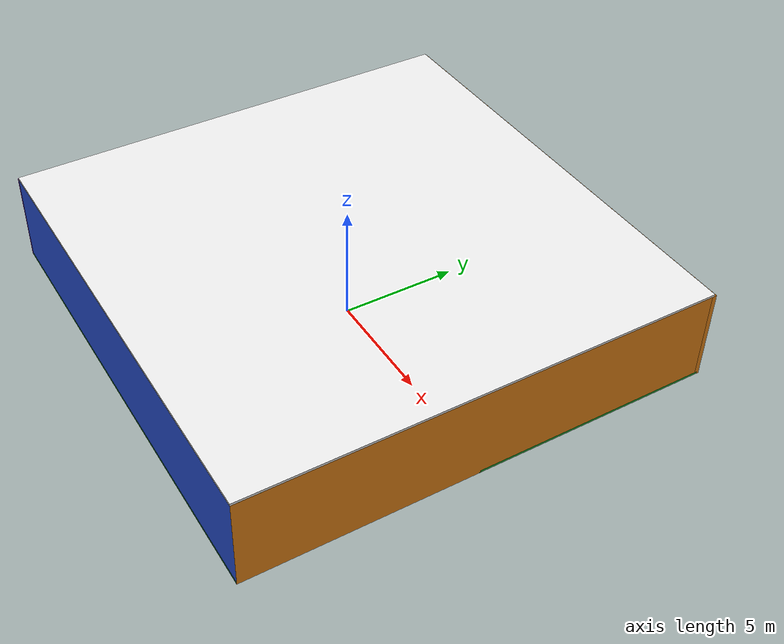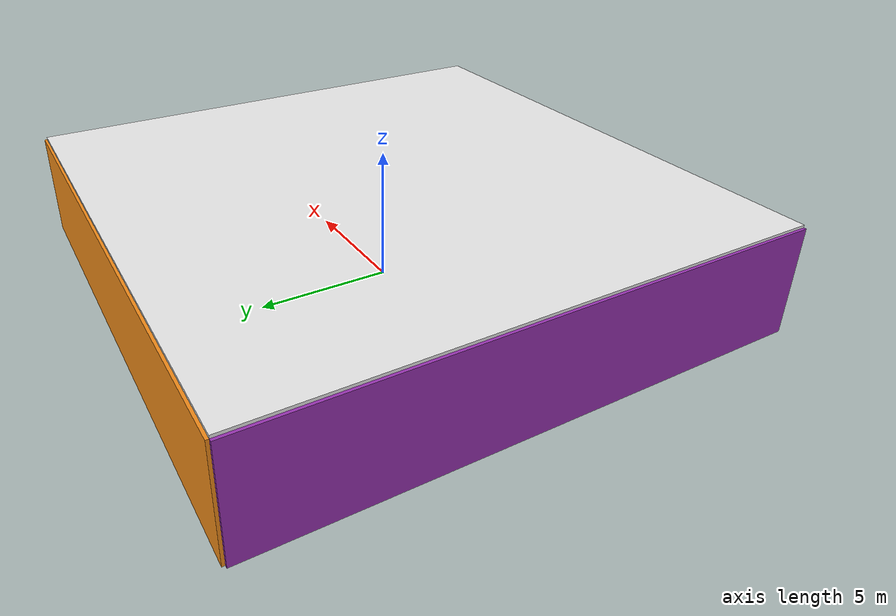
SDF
<sdf version="1.4">
 <world name="default">
  <physics type="ode">
   <max_step_size>0.001</max_step_size>
   <real_time_factor>1</real_time_factor>
   <real_time_update_rate>1000</real_time_update_rate>
   <gravity>0 0 -9.8</gravity>
  </physics>
  <scene><ambient>0.4 0.4 0.4 1</ambient><background>0.7 0.7 0.7 1</background><shadows>1</shadows></scene>
  <model name="Surrounding">
   <static>1</static>
   <link name="Ceiling">
    <collision name="Ceiling_Collision"><geometry><box><size>20 20 0.1</size></box></geometry></collision>
    <visual name="Ceiling_Visual">
     <geometry><box><size>20 20 0.1</size></box></geometry>
     <material>
      <script><uri>file://media/materials/scripts/gazebo.material</uri><name>Gazebo/WhiteGlow</name></script>
     </material>
    </visual>
    <pose>0 0 4.05 0 0 0</pose>
   </link>
   <link name="Wall_South">
    <collision name="Wall_South_Collision">
     <geometry><box><size>20 0 4</size></box></geometry>
     <pose>0 0 2 0 -0 0</pose>
    </collision>
    <visual name="Wall_South_Visual">
     <pose>0 0 2 0 -0 0</pose>
     <geometry><box><size>20 0 4</size></box></geometry>
     <material>
      <script><uri>file://media/materials/scripts/gazebo.material</uri><name>Gazebo/BlueGlow</name></script>
     </material>
    </visual>
    <velocity_decay><linear>0</linear><angular>0</angular></velocity_decay>
    <pose>0 -10 0 0 -0 0</pose>
   </link>
   <link name="Wall_East">
    <collision name="Wall_21_Collision">
     <geometry><box><size>20 0 4</size></box></geometry>
     <pose>0 0 2 0 -0 0</pose>
    </collision>
    <visual name="Wall_21_Visual">
     <pose>0 0 2 0 -0 0</pose>
     <geometry><box><size>20 0 4</size></box></geometry>
     <material>
      <script><uri>file://media/materials/scripts/gazebo.material</uri><name>Gazebo/Orange</name></script>
     </material>
    </visual>
    <velocity_decay><linear>0</linear><angular>0</angular></velocity_decay>
    <pose>10 0 0 0 -0 1.5708</pose>
   </link>
   <link name="Wall_North">
    <collision name="Wall_22_Collision">
     <geometry><box><size>20 0.2 4</size></box></geometry>
     <pose>0 0 2 0 -0 0</pose>
    </collision>
    <visual name="Wall_22_Visual">
     <pose>0 0 2 0 -0 0</pose>
     <geometry><box><size>20 0.2 4</size></box></geometry>
     <material>
      <script><uri>file://media/materials/scripts/gazebo.material</uri><name>Gazebo/Orange</name></script>
     </material>
    </visual>
    <velocity_decay><linear>0</linear><angular>0</angular></velocity_decay>
    <pose>0 10 0 0 -0 0</pose>
   </link>
   <link name="Wall_West">
    <collision name="Wall_23_Collision">
     <geometry><box><size>20 0.2 4</size></box></geometry>
     <pose>0 0 2 0 -0 0</pose>
    </collision>
    <visual name="Wall_23_Visual">
     <pose>0 0 2 0 -0 0</pose>
     <geometry><box><size>20 0.2 4</size></box></geometry>
     <material>
      <script><uri>file://media/materials/scripts/gazebo.material</uri><name>Gazebo/PurpleGlow</name></script>
     </material>
    </visual>
    <velocity_decay><linear>0</linear><angular>0</angular></velocity_decay>
    <pose>-10 0 0 0 0 -1.5708</pose>
   </link>
   <link name="Ground_link">
    <collision name="collision">
     <pose>0 0 .05 0 -0 0</pose>
     <geometry><box><size>20 20 0.1</size></box></geometry>
    </collision>
    <visual name="visual">
     <pose>0 0 .05 0 -0 0</pose>
     <geometry><box><size>20 20 0.1</size></box></geometry>
     <material>
      <script><uri>file://media/materials/scripts/gazebo.material</uri><name>Gazebo/Green</name></script>
     </material>
    </visual>
   </link>
   <static>1</static>
  </model>
  <spherical_coordinates>
   <surface_model>EARTH_WGS84</surface_model>
   <latitude_deg>0</latitude_deg>
   <longitude_deg>0</longitude_deg>
   <elevation>0</elevation>
   <heading_deg>0</heading_deg>
  </spherical_coordinates>
  <light name="lightball_0" type="diffuse">
   <diffuse>0.8 0.8 0.8 1</diffuse>
   <specular>0.2 0.2 0.2 1</specular>
   <attenuation>
    <range>100</range>
    <constant>0.7</constant>
    <linear>0.01</linear>
    <quadratic>0.001</quadratic>
   </attenuation>
   <direction>-0.5 0.1 -0.9</direction>
   <pose>-2.81672263988 7.52191465033 2.92236615572 0 0 0</pose>
  </light>
  <include><uri>model://cabinet</uri><pose>-7.57294118888 7.31414914949 0 0 0 2.3978578675</pose></include>
  <include>
   <uri>model://construction_cone</uri>
   <pose>-4.43036041415 -4.83036017208 0 0 0 1.97093080829</pose>
  </include>
  <include>
   <uri>model://construction_cone</uri>
   <pose>-4.43610392571 -2.45448389211 0 0 0 2.884746255</pose>
  </include>
  <include>
   <uri>model://robocup_3Dsim_goal</uri>
   <pose>-5.67012956268 6.60047799553 0 0 0 3.03971544225</pose>
  </include>
  <include><uri>model://cabinet</uri><pose>-1.59246415416 -6.30352664455 0 0 0 2.67639373296</pose></include>
  <include><uri>model://cabinet</uri><pose>5.17773458947 6.90553177004 0 0 0 0.330926814114</pose></include>
  <include>
   <uri>model://construction_cone</uri>
   <pose>7.33345414675 -4.68574623873 0 0 0 0.0420712553235</pose>
  </include>
 </world>
</sdf>

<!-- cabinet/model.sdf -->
<sdf version="1.5">
  <model name="cabinet">
    <static>true</static>
    <link name="cabinet_bottom_plate">
      <inertial>
        <pose>0 0 -1 0 0 0</pose>
        <inertia>
          <ixx>2.050000</ixx>
          <ixy>0</ixy>
          <ixz>0</ixz>
          <iyy>2.050000</iyy>
          <iyz>0</iyz>
          <izz>2.050000</izz>
        </inertia>
        <mass>25.000000</mass>
      </inertial>
      <collision name="cabinet_bottom_plate_geom">
        <pose>0 0 0.010000 0 0 0</pose>
        <geometry>
          <box>
            <size>0.450000 0.450000 0.020000</size>
          </box>
        </geometry>
      </collision>
      <visual name="cabinet_bottom_plate_geom_visual">
        <pose>0 0 0.010000 0 0 0</pose>
        <geometry>
          <box>
            <size>0.450000 0.450000 0.020000</size>
          </box>
        </geometry>
        <material>
          <script>
            <uri>model://media/materials/scripts/gazebo.material</uri>
            <name>Gazebo/Wood</name>
          </script>
        </material>
      </visual>
      <collision name="cabinet_bottom_plate_geom_cabinet_back_plate">
        <pose>0.235000 0 0.510000 0 0 0</pose>
        <geometry>
          <box>
            <size>0.020000 0.450000 1.020000</size>
          </box>
        </geometry>
      </collision>
      <visual name="cabinet_bottom_plate_geom_cabinet_back_plate_visual">
        <pose>0.235000 0 0.510000 0 0 0</pose>
        <geometry>
          <box>
            <size>0.020000 0.450000 1.020000</size>
          </box>
        </geometry>
        <material>
          <script>
            <uri>model://media/materials/scripts/gazebo.material</uri>
            <name>Gazebo/Wood</name>
          </script>
        </material>
      </visual>
      <collision name="cabinet_bottom_plate_geom_cabinet_left_plate">
        <pose>0 0.235000 0.510000 0 0 0</pose>
        <geometry>
          <box>
            <size>0.450000 0.020000 1.020000</size>
          </box>
        </geometry>
      </collision>
      <visual name="cabinet_bottom_plate_geom_cabinet_left_plate_visual">
        <pose>0 0.235000 0.510000 0 0 0</pose>
        <geometry>
          <box>
            <size>0.450000 0.020000 1.020000</size>
          </box>
        </geometry>
        <material>
          <script>
            <uri>model://media/materials/scripts/gazebo.material</uri>
            <name>Gazebo/Wood</name>
          </script>
        </material>
      </visual>
      <collision name="cabinet_bottom_plate_geom_cabinet_middle_plate">
        <pose>0 0 0.510000 0 0 0</pose>
        <geometry>
          <box>
            <size>0.450000 0.450000 0.020000</size>
          </box>
        </geometry>
      </collision>
      <visual name="cabinet_bottom_plate_geom_cabinet_middle_plate_visual">
        <pose>0 0 0.510000 0 0 0</pose>
        <geometry>
          <box>
            <size>0.450000 0.450000 0.020000</size>
          </box>
        </geometry>
        <material>
          <script>
            <uri>model://media/materials/scripts/gazebo.material</uri>
            <name>Gazebo/Wood</name>
          </script>
        </material>
      </visual>
      <collision name="cabinet_bottom_plate_geom_cabinet_right_plate">
        <pose>0 -0.235000 0.510000 0 0 0</pose>
        <geometry>
          <box>
            <size>0.450000 0.020000 1.020000</size>
          </box>
        </geometry>
      </collision>
      <visual name="cabinet_bottom_plate_geom_cabinet_right_plate_visual">
        <pose>0 -0.235000 0.510000 0 0 0</pose>
        <geometry>
          <box>
            <size>0.450000 0.020000 1.020000</size>
          </box>
        </geometry>
        <material>
          <script>
            <uri>model://media/materials/scripts/gazebo.material</uri>
            <name>Gazebo/Wood</name>
          </script>
        </material>
      </visual>
      <collision name="cabinet_bottom_plate_geom_cabinet_top_plate">
        <pose>0 0 1.010000 0 0 0</pose>
        <geometry>
          <box>
            <size>0.450000 0.450000 0.020000</size>
          </box>
        </geometry>
      </collision>
      <visual name="cabinet_bottom_plate_geom_cabinet_top_plate_visual">
        <pose>0 0 1.010000 0 0 0</pose>
        <geometry>
          <box>
            <size>0.450000 0.450000 0.020000</size>
          </box>
        </geometry>
        <material>
          <script>
            <uri>model://media/materials/scripts/gazebo.material</uri>
            <name>Gazebo/Wood</name>
          </script>
        </material>
      </visual>
    </link>
  </model>
</sdf>

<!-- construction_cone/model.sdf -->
<sdf version="1.5">
  <model name="Construction Cone">
    <link name="link">
      <collision name="collision">
        <geometry>
          <mesh>
            <scale>10 10 10</scale>
            <uri>file://isr-testbed/construction_cone/meshes/construction_cone.dae</uri>
          </mesh>
        </geometry>
      </collision>
      <visual name="visual">
        <geometry>
          <mesh>
            <scale>10 10 10</scale>
            <uri>file://isr-testbed/construction_cone/meshes/construction_cone.dae</uri>
          </mesh>
        </geometry>
      </visual>
    </link>
  </model>
</sdf>

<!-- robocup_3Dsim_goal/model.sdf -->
<sdf version="1.5">
  <model name="robocup_3d_goal">
    <static>true</static>
    <link name="left_post">
      <pose>0 1.05 0.45 0 0 0</pose>
      <collision name="collision">
        <geometry>
          <cylinder>
            <radius>0.05</radius>
            <length>0.9</length>
          </cylinder>
        </geometry>
      </collision>
      <visual name="visual">
        <geometry>
          <cylinder>
            <radius>0.05</radius>
            <length>0.9</length>
          </cylinder>
        </geometry>
        <material>
          <script>
            <uri>file://media/materials/scripts/gazebo.material</uri>
            <name>Gazebo/ZincYellow</name>
          </script>
        </material>
      </visual>
    </link>
    <link name="left_support_horiz_lower">
      <pose>0.30 1.05 0.01 0 0 0</pose>
      <collision name="collision">
        <geometry>
          <box>
            <size>0.50 0.02 0.02</size>
          </box>
        </geometry>
      </collision>
      <visual name="visual">
        <geometry>
          <box>
            <size>0.50 0.02 0.02</size>
          </box>
        </geometry>
        <material>
          <script>
            <uri>file://media/materials/scripts/gazebo.material</uri>
            <name>Gazebo/White</name>
          </script>
        </material>
      </visual>
    </link>
    <link name="left_support_horiz_upper">
      <pose>0.30 1.05 0.79 0 0 0</pose>
      <collision name="collision">
        <geometry>
          <box>
            <size>0.50 0.02 0.02</size>
          </box>
        </geometry>
      </collision>
      <visual name="visual">
        <geometry>
          <box>
            <size>0.50 0.02 0.02</size>
          </box>
        </geometry>
        <material>
          <script>
            <uri>file://media/materials/scripts/gazebo.material</uri>
            <name>Gazebo/White</name>
          </script>
        </material>
      </visual>
    </link>
    <link name="left_support_vertical">
      <pose>0.56 1.05 0.4 0 1.5708 0</pose>
      <collision name="collision">
        <geometry>
          <box>
            <size>0.80 0.02 0.02</size>
          </box>
        </geometry>
      </collision>
      <visual name="visual">
        <geometry>
          <box>
            <size>0.80 0.02 0.02</size>
          </box>
        </geometry>
        <material>
          <script>
            <uri>file://media/materials/scripts/gazebo.material</uri>
            <name>Gazebo/White</name>
          </script>
        </material>
      </visual>
    </link>
    <link name="right_support_horiz_lower">
      <pose>0.30 -1.05 0.01 0 0 0</pose>
      <collision name="collision">
        <geometry>
          <box>
            <size>0.50 0.02 0.02</size>
          </box>
        </geometry>
      </collision>
      <visual name="visual">
        <geometry>
          <box>
            <size>0.50 0.02 0.02</size>
          </box>
        </geometry>
        <material>
          <script>
            <uri>file://media/materials/scripts/gazebo.material</uri>
            <name>Gazebo/White</name>
          </script>
        </material>
      </visual>
    </link>
    <link name="right_support_horiz_upper">
      <pose>0.30 -1.05 0.79 0 0 0</pose>
      <collision name="collision">
        <geometry>
          <box>
            <size>0.50 0.02 0.02</size>
          </box>
        </geometry>
      </collision>
      <visual name="visual">
        <geometry>
          <box>
            <size>0.50 0.02 0.02</size>
          </box>
        </geometry>
        <material>
          <script>
            <uri>file://media/materials/scripts/gazebo.material</uri>
            <name>Gazebo/White</name>
          </script>
        </material>
      </visual>
    </link>
    <link name="right_support_vertical">
      <pose>0.56 -1.05 0.4 0 1.5708 0</pose>
      <collision name="collision">
        <geometry>
          <box>
            <size>0.80 0.02 0.02</size>
          </box>
        </geometry>
      </collision>
      <visual name="visual">
        <geometry>
          <box>
            <size>0.80 0.02 0.02</size>
          </box>
        </geometry>
        <material>
          <script>
            <uri>file://media/materials/scripts/gazebo.material</uri>
            <name>Gazebo/White</name>
          </script>
        </material>
      </visual>
    </link>
    <link name="center_support_horiz_lower">
      <pose>0.56 0 0.01 0 1.5708 0</pose>
      <collision name="collision">
        <geometry>
          <box>
            <size>0.02 2.08 0.02</size>
          </box>
        </geometry>
      </collision>
      <visual name="visual">
        <geometry>
          <box>
            <size>0.02 2.08 0.02</size>
          </box>
        </geometry>
        <material>
          <script>
            <uri>file://media/materials/scripts/gazebo.material</uri>
            <name>Gazebo/White</name>
          </script>
        </material>
      </visual>
    </link>
    <link name="center_support_horiz_upper">
      <pose>0.56 0 0.79 0 1.5708 0</pose>
      <collision name="collision">
        <geometry>
          <box>
            <size>0.02 2.08 0.02</size>
          </box>
        </geometry>
      </collision>
      <visual name="visual">
        <geometry>
          <box>
            <size>0.02 2.08 0.02</size>
          </box>
        </geometry>
        <material>
          <script>
            <uri>file://media/materials/scripts/gazebo.material</uri>
            <name>Gazebo/White</name>
          </script>
        </material>
      </visual>
    </link>
    <link name="right_post">
      <pose>0 -1.05 0.45 0 0 0</pose>
      <collision name="collision">
        <geometry>
          <cylinder>
            <radius>0.05</radius>
            <length>0.9</length>
          </cylinder>
        </geometry>
      </collision>
      <visual name="visual">
        <geometry>
          <cylinder>
            <radius>0.05</radius>
            <length>0.9</length>
          </cylinder>
        </geometry>
        <material>
          <script>
            <uri>file://media/materials/scripts/gazebo.material</uri>
            <name>Gazebo/ZincYellow</name>
          </script>
        </material>
      </visual>
    </link>
    <link name="crossbar">
      <pose>0 0 0.85 1.57 1.57 0</pose>
      <collision name="collision">
        <geometry>
          <cylinder>
            <radius>0.05</radius>
            <length>2.0</length>
          </cylinder>
        </geometry>
      </collision>
      <visual name="visual">
        <geometry>
          <cylinder>
            <radius>0.05</radius>
            <length>2.0</length>
          </cylinder>
        </geometry>
        <material>
          <script>
            <uri>file://media/materials/scripts/gazebo.material</uri>
            <name>Gazebo/ZincYellow</name>
          </script>
        </material>
      </visual>
    </link>
    <link name="center_net">
      <pose>0.56 0 0.40 0 0 0</pose>
      <collision name="collision">
        <geometry>
          <box>
            <size>0.01 2.1 0.80</size>
          </box>
        </geometry>
      </collision>
      <visual name="visual">
        <geometry>
          <box>
            <size>0.01 2.1 0.80</size>
          </box>
        </geometry>
        <material>
          <script>
            <uri>model://../model_source/models/robocup09_spl_field/materials/scripts/</uri>
            <uri>model://../model_source/models/robocup09_spl_field/materials/textures/</uri>
            <name>RoboCup/Net</name>
          </script>
        </material>
      </visual>
    </link>
    <link name="left_net">
      <pose>0.30 1.05 0.40 0 0 0</pose>
      <collision name="collision">
        <geometry>
          <box>
            <size>0.50 0.01 0.76</size>
          </box>
        </geometry>
      </collision>
      <visual name="visual">
        <geometry>
          <box>
            <size>0.50 0.01 0.76</size>
          </box>
        </geometry>
        <material>
          <script>
            <uri>model://../model_source/models/robocup09_spl_field/materials/scripts/</uri>
            <uri>model://../model_source/models/robocup09_spl_field/materials/textures/</uri>
            <name>RoboCup/Net</name>
          </script>
        </material>
      </visual>
    </link>
    <link name="right_net">
      <pose>0.30 -1.05 0.40 0 0 0</pose>
      <collision name="collision">
        <geometry>
          <box>
            <size>0.50 0.01 0.76</size>
          </box>
        </geometry>
      </collision>
      <visual name="visual">
        <geometry>
          <box>
            <size>0.50 0.01 0.76</size>
          </box>
        </geometry>
        <material>
          <script>
            <uri>model://../model_source/models/robocup09_spl_field/materials/scripts/</uri>
            <uri>model://../model_source/models/robocup09_spl_field/materials/textures/</uri>
            <name>RoboCup/Net</name>
          </script>
        </material>
      </visual>
    </link>
  </model>
</sdf>
